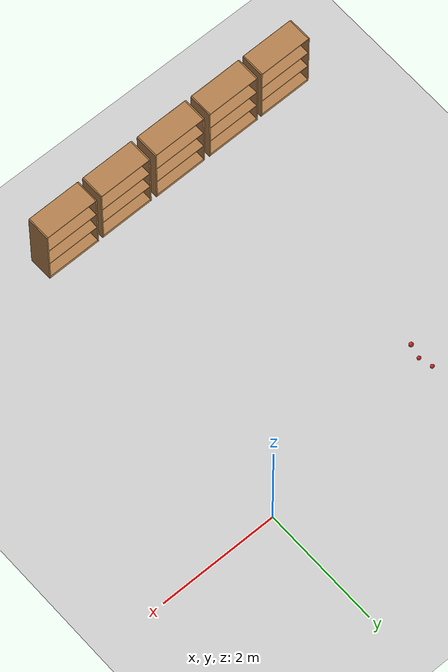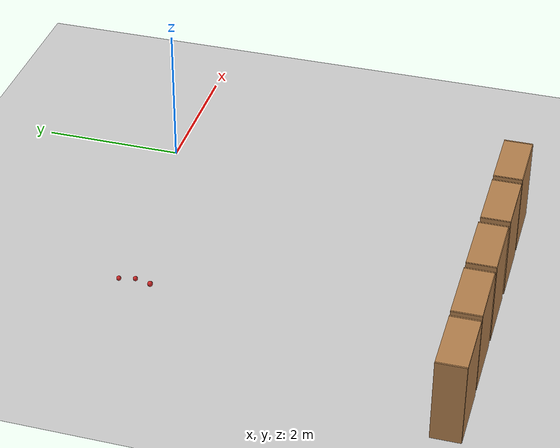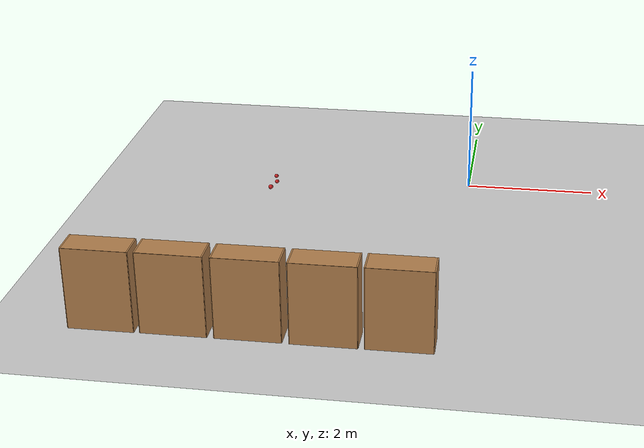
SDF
<sdf version="1.6">
 <world name="default">
  <model name="ground_plane">
   <static>1</static>
   <link name="link">
    <collision name="collision">
     <geometry><plane><normal>0 0 1</normal><size>100 100</size></plane></geometry>
     <surface>
      <contact><collide_bitmask>65535</collide_bitmask></contact>
      <friction><ode><mu>100</mu><mu2>50</mu2></ode></friction>
     </surface>
    </collision>
    <visual name="visual">
     <cast_shadows>0</cast_shadows>
     <geometry><plane><normal>0 0 1</normal><size>100 100</size></plane></geometry>
     <material>
      <script><uri>file://media/materials/scripts/gazebo.material</uri><name>Gazebo/Grey</name></script>
     </material>
    </visual>
   </link>
  </model>
  <model name="bookshelf_13_1">
   <link name="link">
    <inertial><mass>1</mass></inertial>
    <visual name="visual1">
     <pose>0 0.005 0.6 0 -0 0</pose>
     <geometry><box><size>0.9 0.01 1.2</size></box></geometry>
     <material>
      <script><uri>file://media/materials/scripts/gazebo.material</uri><name>Gazebo/Wood</name></script>
      <shader type="pixel"/>
     </material>
    </visual>
    <visual name="visual2">
     <pose>0.45 -0.195 0.6 0 -0 0</pose>
     <geometry><box><size>0.02 0.4 1.2</size></box></geometry>
     <material>
      <script><uri>file://media/materials/scripts/gazebo.material</uri><name>Gazebo/Wood</name></script>
      <shader type="pixel"/>
     </material>
    </visual>
    <visual name="visual6">
     <pose>0 -0.195 0.43 0 -0 0</pose>
     <geometry><box><size>0.88 0.4 0.02</size></box></geometry>
     <material>
      <script><uri>file://media/materials/scripts/gazebo.material</uri><name>Gazebo/Wood</name></script>
      <shader type="pixel"/>
     </material>
    </visual>
    <visual name="visual5">
     <pose>0 -0.195 1.19 0 -0 0</pose>
     <geometry><box><size>0.88 0.4 0.02</size></box></geometry>
     <material>
      <script><uri>file://media/materials/scripts/gazebo.material</uri><name>Gazebo/Wood</name></script>
      <shader type="pixel"/>
     </material>
    </visual>
    <visual name="visual7">
     <pose>0 -0.195 0.8 0 -0 0</pose>
     <geometry><box><size>0.88 0.4 0.02</size></box></geometry>
     <material>
      <script><uri>file://media/materials/scripts/gazebo.material</uri><name>Gazebo/Wood</name></script>
      <shader type="pixel"/>
     </material>
    </visual>
    <visual name="visual4">
     <pose>0 -0.195 0.03 0 -0 0</pose>
     <geometry><box><size>0.88 0.4 0.06</size></box></geometry>
     <material>
      <script><uri>file://media/materials/scripts/gazebo.material</uri><name>Gazebo/Wood</name></script>
      <shader type="pixel"/>
     </material>
    </visual>
    <visual name="visual3">
     <pose>-0.45 -0.195 0.6 0 -0 0</pose>
     <geometry><box><size>0.02 0.4 1.2</size></box></geometry>
     <material>
      <script><uri>file://media/materials/scripts/gazebo.material</uri><name>Gazebo/Wood</name></script>
      <shader type="pixel"/>
     </material>
    </visual>
    <collision name="right_side">
     <pose>-0.45 -0.195 0.6 0 -0 0</pose>
     <geometry><box><size>0.02 0.4 1.2</size></box></geometry>
     <surface>
      <friction>
       <ode><mu>1</mu><mu2>1</mu2><fdir1>0 0 0</fdir1><slip1>0</slip1><slip2>0</slip2></ode>
       <torsional>
        <coefficient>1</coefficient>
        <patch_radius>0</patch_radius>
        <surface_radius>0</surface_radius>
        <use_patch_radius>1</use_patch_radius>
        <ode><slip>0</slip></ode>
       </torsional>
      </friction>
      <bounce><restitution_coefficient>0</restitution_coefficient><threshold>1e+06</threshold></bounce>
      <contact>
       <collide_without_contact>0</collide_without_contact>
       <collide_without_contact_bitmask>1</collide_without_contact_bitmask>
       <collide_bitmask>1</collide_bitmask>
       <ode>
        <soft_cfm>0</soft_cfm>
        <soft_erp>0.2</soft_erp>
        <kp>1e+13</kp>
        <kd>1</kd>
        <max_vel>0.01</max_vel>
        <min_depth>0</min_depth>
       </ode>
       <bullet>
        <split_impulse>1</split_impulse>
        <split_impulse_penetration_threshold>-0.01</split_impulse_penetration_threshold>
        <soft_cfm>0</soft_cfm>
        <soft_erp>0.2</soft_erp>
        <kp>1e+13</kp>
        <kd>1</kd>
       </bullet>
      </contact>
     </surface>
    </collision>
    <collision name="left_side">
     <pose>0.45 -0.195 0.6 0 -0 0</pose>
     <geometry><box><size>0.02 0.4 1.2</size></box></geometry>
     <surface>
      <friction>
       <ode><mu>1</mu><mu2>1</mu2><fdir1>0 0 0</fdir1><slip1>0</slip1><slip2>0</slip2></ode>
       <torsional>
        <coefficient>1</coefficient>
        <patch_radius>0</patch_radius>
        <surface_radius>0</surface_radius>
        <use_patch_radius>1</use_patch_radius>
        <ode><slip>0</slip></ode>
       </torsional>
      </friction>
      <bounce><restitution_coefficient>0</restitution_coefficient><threshold>1e+06</threshold></bounce>
      <contact>
       <collide_without_contact>0</collide_without_contact>
       <collide_without_contact_bitmask>1</collide_without_contact_bitmask>
       <collide_bitmask>1</collide_bitmask>
       <ode>
        <soft_cfm>0</soft_cfm>
        <soft_erp>0.2</soft_erp>
        <kp>1e+13</kp>
        <kd>1</kd>
        <max_vel>0.01</max_vel>
        <min_depth>0</min_depth>
       </ode>
       <bullet>
        <split_impulse>1</split_impulse>
        <split_impulse_penetration_threshold>-0.01</split_impulse_penetration_threshold>
        <soft_cfm>0</soft_cfm>
        <soft_erp>0.2</soft_erp>
        <kp>1e+13</kp>
        <kd>1</kd>
       </bullet>
      </contact>
     </surface>
    </collision>
    <collision name="top">
     <pose>0 -0.195 1.19 0 -0 0</pose>
     <geometry><box><size>0.88 0.4 0.02</size></box></geometry>
     <surface>
      <friction>
       <ode><mu>1</mu><mu2>1</mu2><fdir1>0 0 0</fdir1><slip1>0</slip1><slip2>0</slip2></ode>
       <torsional>
        <coefficient>1</coefficient>
        <patch_radius>0</patch_radius>
        <surface_radius>0</surface_radius>
        <use_patch_radius>1</use_patch_radius>
        <ode><slip>0</slip></ode>
       </torsional>
      </friction>
      <bounce><restitution_coefficient>0</restitution_coefficient><threshold>1e+06</threshold></bounce>
      <contact>
       <collide_without_contact>0</collide_without_contact>
       <collide_without_contact_bitmask>1</collide_without_contact_bitmask>
       <collide_bitmask>1</collide_bitmask>
       <ode>
        <soft_cfm>0</soft_cfm>
        <soft_erp>0.2</soft_erp>
        <kp>1e+13</kp>
        <kd>1</kd>
        <max_vel>0.01</max_vel>
        <min_depth>0</min_depth>
       </ode>
       <bullet>
        <split_impulse>1</split_impulse>
        <split_impulse_penetration_threshold>-0.01</split_impulse_penetration_threshold>
        <soft_cfm>0</soft_cfm>
        <soft_erp>0.2</soft_erp>
        <kp>1e+13</kp>
        <kd>1</kd>
       </bullet>
      </contact>
     </surface>
    </collision>
    <collision name="back">
     <pose>0 0.005 0.6 0 -0 0</pose>
     <geometry><box><size>0.9 0.01 1.2</size></box></geometry>
     <surface>
      <friction>
       <ode><mu>1</mu><mu2>1</mu2><fdir1>0 0 0</fdir1><slip1>0</slip1><slip2>0</slip2></ode>
       <torsional>
        <coefficient>1</coefficient>
        <patch_radius>0</patch_radius>
        <surface_radius>0</surface_radius>
        <use_patch_radius>1</use_patch_radius>
        <ode><slip>0</slip></ode>
       </torsional>
      </friction>
      <bounce><restitution_coefficient>0</restitution_coefficient><threshold>1e+06</threshold></bounce>
      <contact>
       <collide_without_contact>0</collide_without_contact>
       <collide_without_contact_bitmask>1</collide_without_contact_bitmask>
       <collide_bitmask>1</collide_bitmask>
       <ode>
        <soft_cfm>0</soft_cfm>
        <soft_erp>0.2</soft_erp>
        <kp>1e+13</kp>
        <kd>1</kd>
        <max_vel>0.01</max_vel>
        <min_depth>0</min_depth>
       </ode>
       <bullet>
        <split_impulse>1</split_impulse>
        <split_impulse_penetration_threshold>-0.01</split_impulse_penetration_threshold>
        <soft_cfm>0</soft_cfm>
        <soft_erp>0.2</soft_erp>
        <kp>1e+13</kp>
        <kd>1</kd>
       </bullet>
      </contact>
     </surface>
    </collision>
    <collision name="bottom">
     <pose>0 -0.195 0.03 0 -0 0</pose>
     <geometry><box><size>0.88 0.4 0.06</size></box></geometry>
     <surface>
      <friction>
       <ode><mu>1</mu><mu2>1</mu2><fdir1>0 0 0</fdir1><slip1>0</slip1><slip2>0</slip2></ode>
       <torsional>
        <coefficient>1</coefficient>
        <patch_radius>0</patch_radius>
        <surface_radius>0</surface_radius>
        <use_patch_radius>1</use_patch_radius>
        <ode><slip>0</slip></ode>
       </torsional>
      </friction>
      <bounce><restitution_coefficient>0</restitution_coefficient><threshold>1e+06</threshold></bounce>
      <contact>
       <collide_without_contact>0</collide_without_contact>
       <collide_without_contact_bitmask>1</collide_without_contact_bitmask>
       <collide_bitmask>1</collide_bitmask>
       <ode>
        <soft_cfm>0</soft_cfm>
        <soft_erp>0.2</soft_erp>
        <kp>1e+13</kp>
        <kd>1</kd>
        <max_vel>0.01</max_vel>
        <min_depth>0</min_depth>
       </ode>
       <bullet>
        <split_impulse>1</split_impulse>
        <split_impulse_penetration_threshold>-0.01</split_impulse_penetration_threshold>
        <soft_cfm>0</soft_cfm>
        <soft_erp>0.2</soft_erp>
        <kp>1e+13</kp>
        <kd>1</kd>
       </bullet>
      </contact>
     </surface>
    </collision>
    <collision name="high_shelf">
     <pose>0 -0.195 0.8 0 -0 0</pose>
     <geometry><box><size>0.88 0.4 0.02</size></box></geometry>
     <surface>
      <friction>
       <ode><mu>1</mu><mu2>1</mu2><fdir1>0 0 0</fdir1><slip1>0</slip1><slip2>0</slip2></ode>
       <torsional>
        <coefficient>1</coefficient>
        <patch_radius>0</patch_radius>
        <surface_radius>0</surface_radius>
        <use_patch_radius>1</use_patch_radius>
        <ode><slip>0</slip></ode>
       </torsional>
      </friction>
      <bounce><restitution_coefficient>0</restitution_coefficient><threshold>1e+06</threshold></bounce>
      <contact>
       <collide_without_contact>0</collide_without_contact>
       <collide_without_contact_bitmask>1</collide_without_contact_bitmask>
       <collide_bitmask>1</collide_bitmask>
       <ode>
        <soft_cfm>0</soft_cfm>
        <soft_erp>0.2</soft_erp>
        <kp>1e+13</kp>
        <kd>1</kd>
        <max_vel>0.01</max_vel>
        <min_depth>0</min_depth>
       </ode>
       <bullet>
        <split_impulse>1</split_impulse>
        <split_impulse_penetration_threshold>-0.01</split_impulse_penetration_threshold>
        <soft_cfm>0</soft_cfm>
        <soft_erp>0.2</soft_erp>
        <kp>1e+13</kp>
        <kd>1</kd>
       </bullet>
      </contact>
     </surface>
    </collision>
    <collision name="low_shelf">
     <pose>0 -0.195 0.43 0 -0 0</pose>
     <geometry><box><size>0.88 0.4 0.02</size></box></geometry>
     <surface>
      <friction>
       <ode><mu>1</mu><mu2>1</mu2><fdir1>0 0 0</fdir1><slip1>0</slip1><slip2>0</slip2></ode>
       <torsional>
        <coefficient>1</coefficient>
        <patch_radius>0</patch_radius>
        <surface_radius>0</surface_radius>
        <use_patch_radius>1</use_patch_radius>
        <ode><slip>0</slip></ode>
       </torsional>
      </friction>
      <bounce><restitution_coefficient>0</restitution_coefficient><threshold>1e+06</threshold></bounce>
      <contact>
       <collide_without_contact>0</collide_without_contact>
       <collide_without_contact_bitmask>1</collide_without_contact_bitmask>
       <collide_bitmask>1</collide_bitmask>
       <ode>
        <soft_cfm>0</soft_cfm>
        <soft_erp>0.2</soft_erp>
        <kp>1e+13</kp>
        <kd>1</kd>
        <max_vel>0.01</max_vel>
        <min_depth>0</min_depth>
       </ode>
       <bullet>
        <split_impulse>1</split_impulse>
        <split_impulse_penetration_threshold>-0.01</split_impulse_penetration_threshold>
        <soft_cfm>0</soft_cfm>
        <soft_erp>0.2</soft_erp>
        <kp>1e+13</kp>
        <kd>1</kd>
       </bullet>
      </contact>
     </surface>
    </collision>
   </link>
   <model name="bookshelf">
    <static>1</static>
    <link name="link">
     <inertial><mass>1</mass></inertial>
     <collision name="back">
      <pose>0 0.005 0.6 0 -0 0</pose>
      <geometry><box><size>0.9 0.01 1.2</size></box></geometry>
     </collision>
     <visual name="visual1">
      <pose>0 0.005 0.6 0 -0 0</pose>
      <geometry><box><size>0.9 0.01 1.2</size></box></geometry>
      <material>
       <script><uri>file://media/materials/scripts/gazebo.material</uri><name>Gazebo/Wood</name></script>
      </material>
     </visual>
     <collision name="left_side">
      <pose>0.45 -0.195 0.6 0 -0 0</pose>
      <geometry><box><size>0.02 0.4 1.2</size></box></geometry>
     </collision>
     <visual name="visual2">
      <pose>0.45 -0.195 0.6 0 -0 0</pose>
      <geometry><box><size>0.02 0.4 1.2</size></box></geometry>
      <material>
       <script><uri>file://media/materials/scripts/gazebo.material</uri><name>Gazebo/Wood</name></script>
      </material>
     </visual>
     <collision name="right_side">
      <pose>-0.45 -0.195 0.6 0 -0 0</pose>
      <geometry><box><size>0.02 0.4 1.2</size></box></geometry>
     </collision>
     <visual name="visual3">
      <pose>-0.45 -0.195 0.6 0 -0 0</pose>
      <geometry><box><size>0.02 0.4 1.2</size></box></geometry>
      <material>
       <script><uri>file://media/materials/scripts/gazebo.material</uri><name>Gazebo/Wood</name></script>
      </material>
     </visual>
     <collision name="bottom">
      <pose>0 -0.195 0.03 0 -0 0</pose>
      <geometry><box><size>0.88 0.4 0.06</size></box></geometry>
     </collision>
     <visual name="visual4">
      <pose>0 -0.195 0.03 0 -0 0</pose>
      <geometry><box><size>0.88 0.4 0.06</size></box></geometry>
      <material>
       <script><uri>file://media/materials/scripts/gazebo.material</uri><name>Gazebo/Wood</name></script>
      </material>
     </visual>
     <collision name="top">
      <pose>0 -0.195 1.19 0 -0 0</pose>
      <geometry><box><size>0.88 0.4 0.02</size></box></geometry>
     </collision>
     <visual name="visual5">
      <pose>0 -0.195 1.19 0 -0 0</pose>
      <geometry><box><size>0.88 0.4 0.02</size></box></geometry>
      <material>
       <script><uri>file://media/materials/scripts/gazebo.material</uri><name>Gazebo/Wood</name></script>
      </material>
     </visual>
     <collision name="low_shelf">
      <pose>0 -0.195 0.43 0 -0 0</pose>
      <geometry><box><size>0.88 0.4 0.02</size></box></geometry>
     </collision>
     <visual name="visual6">
      <pose>0 -0.195 0.43 0 -0 0</pose>
      <geometry><box><size>0.88 0.4 0.02</size></box></geometry>
      <material>
       <script><uri>file://media/materials/scripts/gazebo.material</uri><name>Gazebo/Wood</name></script>
      </material>
     </visual>
     <collision name="high_shelf">
      <pose>0 -0.195 0.8 0 -0 0</pose>
      <geometry><box><size>0.88 0.4 0.02</size></box></geometry>
     </collision>
     <visual name="visual7">
      <pose>0 -0.195 0.8 0 -0 0</pose>
      <geometry><box><size>0.88 0.4 0.02</size></box></geometry>
      <material>
       <script><uri>file://media/materials/scripts/gazebo.material</uri><name>Gazebo/Wood</name></script>
      </material>
     </visual>
    </link>
    <pose>0.995227 0.001782 0 0 -0 0</pose>
   </model>
   <model name="bookshelf_0">
    <static>1</static>
    <link name="link">
     <inertial><mass>1</mass></inertial>
     <collision name="back">
      <pose>0 0.005 0.6 0 -0 0</pose>
      <geometry><box><size>0.9 0.01 1.2</size></box></geometry>
     </collision>
     <visual name="visual1">
      <pose>0 0.005 0.6 0 -0 0</pose>
      <geometry><box><size>0.9 0.01 1.2</size></box></geometry>
      <material>
       <script><uri>file://media/materials/scripts/gazebo.material</uri><name>Gazebo/Wood</name></script>
      </material>
     </visual>
     <collision name="left_side">
      <pose>0.45 -0.195 0.6 0 -0 0</pose>
      <geometry><box><size>0.02 0.4 1.2</size></box></geometry>
     </collision>
     <visual name="visual2">
      <pose>0.45 -0.195 0.6 0 -0 0</pose>
      <geometry><box><size>0.02 0.4 1.2</size></box></geometry>
      <material>
       <script><uri>file://media/materials/scripts/gazebo.material</uri><name>Gazebo/Wood</name></script>
      </material>
     </visual>
     <collision name="right_side">
      <pose>-0.45 -0.195 0.6 0 -0 0</pose>
      <geometry><box><size>0.02 0.4 1.2</size></box></geometry>
     </collision>
     <visual name="visual3">
      <pose>-0.45 -0.195 0.6 0 -0 0</pose>
      <geometry><box><size>0.02 0.4 1.2</size></box></geometry>
      <material>
       <script><uri>file://media/materials/scripts/gazebo.material</uri><name>Gazebo/Wood</name></script>
      </material>
     </visual>
     <collision name="bottom">
      <pose>0 -0.195 0.03 0 -0 0</pose>
      <geometry><box><size>0.88 0.4 0.06</size></box></geometry>
     </collision>
     <visual name="visual4">
      <pose>0 -0.195 0.03 0 -0 0</pose>
      <geometry><box><size>0.88 0.4 0.06</size></box></geometry>
      <material>
       <script><uri>file://media/materials/scripts/gazebo.material</uri><name>Gazebo/Wood</name></script>
      </material>
     </visual>
     <collision name="top">
      <pose>0 -0.195 1.19 0 -0 0</pose>
      <geometry><box><size>0.88 0.4 0.02</size></box></geometry>
     </collision>
     <visual name="visual5">
      <pose>0 -0.195 1.19 0 -0 0</pose>
      <geometry><box><size>0.88 0.4 0.02</size></box></geometry>
      <material>
       <script><uri>file://media/materials/scripts/gazebo.material</uri><name>Gazebo/Wood</name></script>
      </material>
     </visual>
     <collision name="low_shelf">
      <pose>0 -0.195 0.43 0 -0 0</pose>
      <geometry><box><size>0.88 0.4 0.02</size></box></geometry>
     </collision>
     <visual name="visual6">
      <pose>0 -0.195 0.43 0 -0 0</pose>
      <geometry><box><size>0.88 0.4 0.02</size></box></geometry>
      <material>
       <script><uri>file://media/materials/scripts/gazebo.material</uri><name>Gazebo/Wood</name></script>
      </material>
     </visual>
     <collision name="high_shelf">
      <pose>0 -0.195 0.8 0 -0 0</pose>
      <geometry><box><size>0.88 0.4 0.02</size></box></geometry>
     </collision>
     <visual name="visual7">
      <pose>0 -0.195 0.8 0 -0 0</pose>
      <geometry><box><size>0.88 0.4 0.02</size></box></geometry>
      <material>
       <script><uri>file://media/materials/scripts/gazebo.material</uri><name>Gazebo/Wood</name></script>
      </material>
     </visual>
    </link>
    <pose>2.00556 -0.004623 0 0 -0 0</pose>
   </model>
   <model name="bookshelf_1">
    <static>1</static>
    <link name="link">
     <inertial><mass>1</mass></inertial>
     <collision name="back">
      <pose>0 0.005 0.6 0 -0 0</pose>
      <geometry><box><size>0.9 0.01 1.2</size></box></geometry>
     </collision>
     <visual name="visual1">
      <pose>0 0.005 0.6 0 -0 0</pose>
      <geometry><box><size>0.9 0.01 1.2</size></box></geometry>
      <material>
       <script><uri>file://media/materials/scripts/gazebo.material</uri><name>Gazebo/Wood</name></script>
      </material>
     </visual>
     <collision name="left_side">
      <pose>0.45 -0.195 0.6 0 -0 0</pose>
      <geometry><box><size>0.02 0.4 1.2</size></box></geometry>
     </collision>
     <visual name="visual2">
      <pose>0.45 -0.195 0.6 0 -0 0</pose>
      <geometry><box><size>0.02 0.4 1.2</size></box></geometry>
      <material>
       <script><uri>file://media/materials/scripts/gazebo.material</uri><name>Gazebo/Wood</name></script>
      </material>
     </visual>
     <collision name="right_side">
      <pose>-0.45 -0.195 0.6 0 -0 0</pose>
      <geometry><box><size>0.02 0.4 1.2</size></box></geometry>
     </collision>
     <visual name="visual3">
      <pose>-0.45 -0.195 0.6 0 -0 0</pose>
      <geometry><box><size>0.02 0.4 1.2</size></box></geometry>
      <material>
       <script><uri>file://media/materials/scripts/gazebo.material</uri><name>Gazebo/Wood</name></script>
      </material>
     </visual>
     <collision name="bottom">
      <pose>0 -0.195 0.03 0 -0 0</pose>
      <geometry><box><size>0.88 0.4 0.06</size></box></geometry>
     </collision>
     <visual name="visual4">
      <pose>0 -0.195 0.03 0 -0 0</pose>
      <geometry><box><size>0.88 0.4 0.06</size></box></geometry>
      <material>
       <script><uri>file://media/materials/scripts/gazebo.material</uri><name>Gazebo/Wood</name></script>
      </material>
     </visual>
     <collision name="top">
      <pose>0 -0.195 1.19 0 -0 0</pose>
      <geometry><box><size>0.88 0.4 0.02</size></box></geometry>
     </collision>
     <visual name="visual5">
      <pose>0 -0.195 1.19 0 -0 0</pose>
      <geometry><box><size>0.88 0.4 0.02</size></box></geometry>
      <material>
       <script><uri>file://media/materials/scripts/gazebo.material</uri><name>Gazebo/Wood</name></script>
      </material>
     </visual>
     <collision name="low_shelf">
      <pose>0 -0.195 0.43 0 -0 0</pose>
      <geometry><box><size>0.88 0.4 0.02</size></box></geometry>
     </collision>
     <visual name="visual6">
      <pose>0 -0.195 0.43 0 -0 0</pose>
      <geometry><box><size>0.88 0.4 0.02</size></box></geometry>
      <material>
       <script><uri>file://media/materials/scripts/gazebo.material</uri><name>Gazebo/Wood</name></script>
      </material>
     </visual>
     <collision name="high_shelf">
      <pose>0 -0.195 0.8 0 -0 0</pose>
      <geometry><box><size>0.88 0.4 0.02</size></box></geometry>
     </collision>
     <visual name="visual7">
      <pose>0 -0.195 0.8 0 -0 0</pose>
      <geometry><box><size>0.88 0.4 0.02</size></box></geometry>
      <material>
       <script><uri>file://media/materials/scripts/gazebo.material</uri><name>Gazebo/Wood</name></script>
      </material>
     </visual>
    </link>
    <pose>3.01465 -0.007637 0 0 -0 0</pose>
   </model>
   <model name="bookshelf_2">
    <static>1</static>
    <link name="link">
     <inertial><mass>1</mass></inertial>
     <collision name="back">
      <pose>0 0.005 0.6 0 -0 0</pose>
      <geometry><box><size>0.9 0.01 1.2</size></box></geometry>
     </collision>
     <visual name="visual1">
      <pose>0 0.005 0.6 0 -0 0</pose>
      <geometry><box><size>0.9 0.01 1.2</size></box></geometry>
      <material>
       <script><uri>file://media/materials/scripts/gazebo.material</uri><name>Gazebo/Wood</name></script>
      </material>
     </visual>
     <collision name="left_side">
      <pose>0.45 -0.195 0.6 0 -0 0</pose>
      <geometry><box><size>0.02 0.4 1.2</size></box></geometry>
     </collision>
     <visual name="visual2">
      <pose>0.45 -0.195 0.6 0 -0 0</pose>
      <geometry><box><size>0.02 0.4 1.2</size></box></geometry>
      <material>
       <script><uri>file://media/materials/scripts/gazebo.material</uri><name>Gazebo/Wood</name></script>
      </material>
     </visual>
     <collision name="right_side">
      <pose>-0.45 -0.195 0.6 0 -0 0</pose>
      <geometry><box><size>0.02 0.4 1.2</size></box></geometry>
     </collision>
     <visual name="visual3">
      <pose>-0.45 -0.195 0.6 0 -0 0</pose>
      <geometry><box><size>0.02 0.4 1.2</size></box></geometry>
      <material>
       <script><uri>file://media/materials/scripts/gazebo.material</uri><name>Gazebo/Wood</name></script>
      </material>
     </visual>
     <collision name="bottom">
      <pose>0 -0.195 0.03 0 -0 0</pose>
      <geometry><box><size>0.88 0.4 0.06</size></box></geometry>
     </collision>
     <visual name="visual4">
      <pose>0 -0.195 0.03 0 -0 0</pose>
      <geometry><box><size>0.88 0.4 0.06</size></box></geometry>
      <material>
       <script><uri>file://media/materials/scripts/gazebo.material</uri><name>Gazebo/Wood</name></script>
      </material>
     </visual>
     <collision name="top">
      <pose>0 -0.195 1.19 0 -0 0</pose>
      <geometry><box><size>0.88 0.4 0.02</size></box></geometry>
     </collision>
     <visual name="visual5">
      <pose>0 -0.195 1.19 0 -0 0</pose>
      <geometry><box><size>0.88 0.4 0.02</size></box></geometry>
      <material>
       <script><uri>file://media/materials/scripts/gazebo.material</uri><name>Gazebo/Wood</name></script>
      </material>
     </visual>
     <collision name="low_shelf">
      <pose>0 -0.195 0.43 0 -0 0</pose>
      <geometry><box><size>0.88 0.4 0.02</size></box></geometry>
     </collision>
     <visual name="visual6">
      <pose>0 -0.195 0.43 0 -0 0</pose>
      <geometry><box><size>0.88 0.4 0.02</size></box></geometry>
      <material>
       <script><uri>file://media/materials/scripts/gazebo.material</uri><name>Gazebo/Wood</name></script>
      </material>
     </visual>
     <collision name="high_shelf">
      <pose>0 -0.195 0.8 0 -0 0</pose>
      <geometry><box><size>0.88 0.4 0.02</size></box></geometry>
     </collision>
     <visual name="visual7">
      <pose>0 -0.195 0.8 0 -0 0</pose>
      <geometry><box><size>0.88 0.4 0.02</size></box></geometry>
      <material>
       <script><uri>file://media/materials/scripts/gazebo.material</uri><name>Gazebo/Wood</name></script>
      </material>
     </visual>
    </link>
    <pose>4.0064 -0.00407 0 0 -0 0</pose>
   </model>
   <static>1</static>
   <pose>-0.530233 -5.2898 0 0 0 -3.13398</pose>
  </model>
  <model name="RoboCup SPL Ball">
   <static>0</static>
   <link name="ball">
    <inertial>
     <mass>0.0056</mass>
     <inertia>
      <ixx>2.37e-06</ixx>
      <iyy>2.37e-06</iyy>
      <izz>2.37e-06</izz>
      <ixy>0</ixy>
      <ixz>0</ixz>
      <iyz>0</iyz>
     </inertia>
    </inertial>
    <collision name="collision"><geometry><sphere><radius>0.0325</radius></sphere></geometry></collision>
    <visual name="visual">
     <geometry><sphere><radius>0.0325</radius></sphere></geometry>
     <material>
      <script><uri>file://media/materials/scripts/gazebo.material</uri><name>Gazebo/RedBright</name></script>
     </material>
    </visual>
   </link>
   <pose>-3.20519 -0.261026 0.0925 0 -0 0</pose>
  </model>
  <model name="RoboCup SPL Ball_0">
   <static>0</static>
   <link name="ball">
    <inertial>
     <mass>0.0056</mass>
     <inertia>
      <ixx>2.37e-06</ixx>
      <iyy>2.37e-06</iyy>
      <izz>2.37e-06</izz>
      <ixy>0</ixy>
      <ixz>0</ixz>
      <iyz>0</iyz>
     </inertia>
    </inertial>
    <collision name="collision"><geometry><sphere><radius>0.0325</radius></sphere></geometry></collision>
    <visual name="visual">
     <geometry><sphere><radius>0.0325</radius></sphere></geometry>
     <material>
      <script><uri>file://media/materials/scripts/gazebo.material</uri><name>Gazebo/RedBright</name></script>
     </material>
    </visual>
   </link>
   <pose>-3.14998 -0.479552 0.0925 0 -0 0</pose>
  </model>
  <model name="cricket_ball">
   <link name="link">
    <pose>0 0 0.0375 0 -0 0</pose>
    <inertial>
     <mass>0.1467</mass>
     <inertia>
      <ixx>8.25187e-05</ixx>
      <ixy>0</ixy>
      <ixz>0</ixz>
      <iyy>8.25187e-05</iyy>
      <iyz>0</iyz>
      <izz>8.25187e-05</izz>
     </inertia>
    </inertial>
    <collision name="collision">
     <geometry><sphere><radius>0.0375</radius></sphere></geometry>
     <surface>
      <contact>
       <poissons_ratio>0.347</poissons_ratio>
       <elastic_modulus>8.8e+09</elastic_modulus>
       <ode><kp>100000</kp><kd>100</kd><max_vel>100</max_vel><min_depth>0.001</min_depth></ode>
      </contact>
      <friction>
       <torsional>
        <coefficient>1</coefficient>
        <use_patch_radius>0</use_patch_radius>
        <surface_radius>0.01</surface_radius>
       </torsional>
      </friction>
     </surface>
    </collision>
    <visual name="visual">
     <geometry><sphere><radius>0.0375</radius></sphere></geometry>
     <material>
      <script><uri>file://media/materials/scripts/gazebo.material</uri><name>Gazebo/Red</name></script>
     </material>
    </visual>
    <velocity_decay><linear>0</linear><angular>0.005</angular></velocity_decay>
   </link>
   <pose>-3.20794 -0.710196 0.058986 0 -0 0</pose>
  </model>
 </world>
</sdf>
